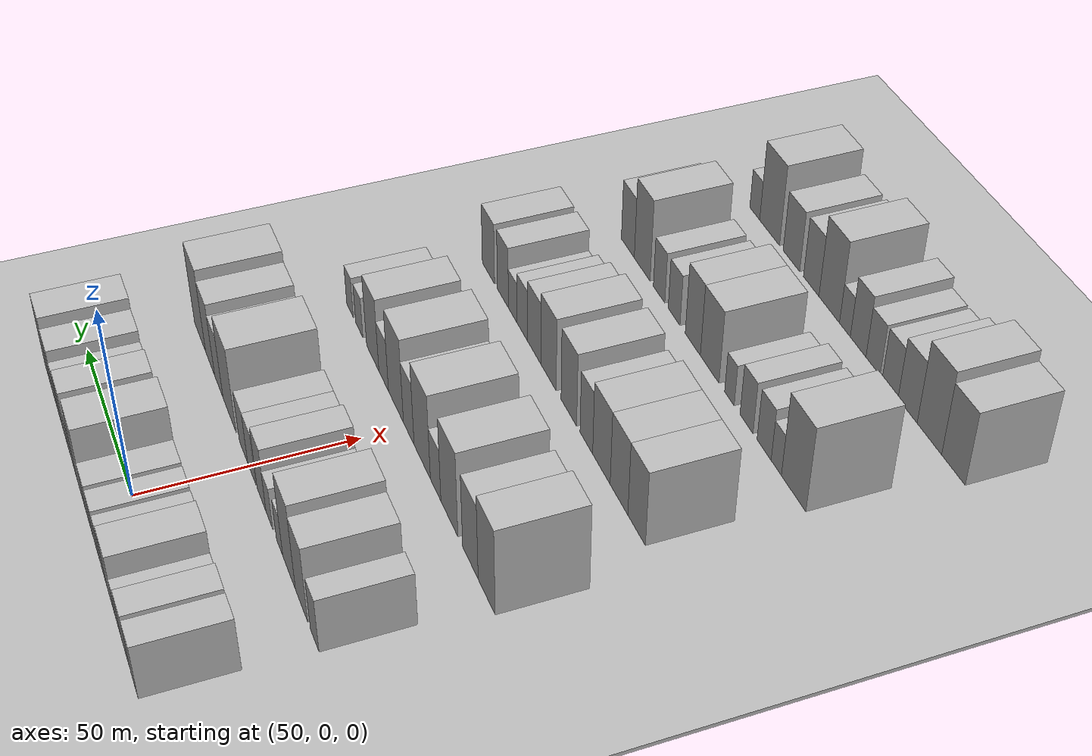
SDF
<sdf version="1.6">
 <world name="default">
  <include><name>ground_plane_1</name><uri>model://HANNAS_ground_plane</uri></include>
  <include>
   <name>ground_plane_2</name>
   <uri>model://HANNAS_ground_plane</uri>
   <pose>100 0 0  0 0 0</pose>
  </include>
  <model name="building_61">
   <static>1</static>
   <pose>50.0000 -51.2573 0 0.000000 0.000000 0.000000</pose>
   <link name="link">
    <pose>0 0 7.50 0 0 0</pose>
    <collision name="collision"><geometry><box><size>20.0000 7.0464 15.0000</size></box></geometry></collision>
    <visual name="visual">
     <cast_shadows>0</cast_shadows>
     <geometry><box><size>20.0000 7.0464 15.0000</size></box></geometry>
     <material>
      <script>
       <uri>model://HANNAS_wall/materials/scripts</uri>
       <uri>model://HANNAS_wall/materials/textures</uri>
       <name>vrc/HANNAS_wall</name>
      </script>
     </material>
    </visual>
   </link>
  </model>
  <model name="building_62">
   <static>1</static>
   <pose>50.0000 -43.1215 0 0.000000 0.000000 0.000000</pose>
   <link name="link">
    <pose>0 0 7.50 0 0 0</pose>
    <collision name="collision"><geometry><box><size>20.0000 7.2253 15.0000</size></box></geometry></collision>
    <visual name="visual">
     <cast_shadows>0</cast_shadows>
     <geometry><box><size>20.0000 7.2253 15.0000</size></box></geometry>
     <material>
      <script>
       <uri>model://HANNAS_wall/materials/scripts</uri>
       <uri>model://HANNAS_wall/materials/textures</uri>
       <name>vrc/HANNAS_wall</name>
      </script>
     </material>
    </visual>
   </link>
  </model>
  <model name="building_63">
   <static>1</static>
   <pose>50.0000 -36.5957 0 0.000000 0.000000 0.000000</pose>
   <link name="link">
    <pose>0 0 6.00 0 0 0</pose>
    <collision name="collision"><geometry><box><size>20.0000 5.8263 12.0000</size></box></geometry></collision>
    <visual name="visual">
     <cast_shadows>0</cast_shadows>
     <geometry><box><size>20.0000 5.8263 12.0000</size></box></geometry>
     <material>
      <script>
       <uri>model://HANNAS_wall/materials/scripts</uri>
       <uri>model://HANNAS_wall/materials/textures</uri>
       <name>vrc/HANNAS_wall</name>
      </script>
     </material>
    </visual>
   </link>
  </model>
  <model name="building_64">
   <static>1</static>
   <pose>50.0000 -29.1909 0 0.000000 0.000000 0.000000</pose>
   <link name="link">
    <pose>0 0 9.00 0 0 0</pose>
    <collision name="collision"><geometry><box><size>20.0000 8.9832 18.0000</size></box></geometry></collision>
    <visual name="visual">
     <cast_shadows>0</cast_shadows>
     <geometry><box><size>20.0000 8.9832 18.0000</size></box></geometry>
     <material>
      <script>
       <uri>model://HANNAS_wall/materials/scripts</uri>
       <uri>model://HANNAS_wall/materials/textures</uri>
       <name>vrc/HANNAS_wall</name>
      </script>
     </material>
    </visual>
   </link>
  </model>
  <model name="building_65">
   <static>1</static>
   <pose>50.0000 -21.6026 0 0.000000 0.000000 0.000000</pose>
   <link name="link">
    <pose>0 0 7.50 0 0 0</pose>
    <collision name="collision"><geometry><box><size>20.0000 6.1934 15.0000</size></box></geometry></collision>
    <visual name="visual">
     <cast_shadows>0</cast_shadows>
     <geometry><box><size>20.0000 6.1934 15.0000</size></box></geometry>
     <material>
      <script>
       <uri>model://HANNAS_wall/materials/scripts</uri>
       <uri>model://HANNAS_wall/materials/textures</uri>
       <name>vrc/HANNAS_wall</name>
      </script>
     </material>
    </visual>
   </link>
  </model>
  <model name="building_66">
   <static>1</static>
   <pose>50.0000 -14.2411 0 0.000000 0.000000 0.000000</pose>
   <link name="link">
    <pose>0 0 7.50 0 0 0</pose>
    <collision name="collision"><geometry><box><size>20.0000 6.5297 15.0000</size></box></geometry></collision>
    <visual name="visual">
     <cast_shadows>0</cast_shadows>
     <geometry><box><size>20.0000 6.5297 15.0000</size></box></geometry>
     <material>
      <script>
       <uri>model://HANNAS_wall/materials/scripts</uri>
       <uri>model://HANNAS_wall/materials/textures</uri>
       <name>vrc/HANNAS_wall</name>
      </script>
     </material>
    </visual>
   </link>
  </model>
  <model name="building_67">
   <static>1</static>
   <pose>50.0000 -6.2977 0 0.000000 0.000000 0.000000</pose>
   <link name="link">
    <pose>0 0 7.50 0 0 0</pose>
    <collision name="collision"><geometry><box><size>20.0000 7.3571 15.0000</size></box></geometry></collision>
    <visual name="visual">
     <cast_shadows>0</cast_shadows>
     <geometry><box><size>20.0000 7.3571 15.0000</size></box></geometry>
     <material>
      <script>
       <uri>model://HANNAS_wall/materials/scripts</uri>
       <uri>model://HANNAS_wall/materials/textures</uri>
       <name>vrc/HANNAS_wall</name>
      </script>
     </material>
    </visual>
   </link>
  </model>
  <model name="building_68">
   <static>1</static>
   <pose>50.0000 2.3740 0 0.000000 0.000000 0.000000</pose>
   <link name="link">
    <pose>0 0 12.00 0 0 0</pose>
    <collision name="collision"><geometry><box><size>20.0000 9.9862 24.0000</size></box></geometry></collision>
    <visual name="visual">
     <cast_shadows>0</cast_shadows>
     <geometry><box><size>20.0000 9.9862 24.0000</size></box></geometry>
     <material>
      <script>
       <uri>model://HANNAS_wall/materials/scripts</uri>
       <uri>model://HANNAS_wall/materials/textures</uri>
       <name>vrc/HANNAS_wall</name>
      </script>
     </material>
    </visual>
   </link>
  </model>
  <model name="building_69">
   <static>1</static>
   <pose>50.0000 10.7712 0 0.000000 0.000000 0.000000</pose>
   <link name="link">
    <pose>0 0 7.50 0 0 0</pose>
    <collision name="collision"><geometry><box><size>20.0000 6.8083 15.0000</size></box></geometry></collision>
    <visual name="visual">
     <cast_shadows>0</cast_shadows>
     <geometry><box><size>20.0000 6.8083 15.0000</size></box></geometry>
     <material>
      <script>
       <uri>model://HANNAS_wall/materials/scripts</uri>
       <uri>model://HANNAS_wall/materials/textures</uri>
       <name>vrc/HANNAS_wall</name>
      </script>
     </material>
    </visual>
   </link>
  </model>
  <model name="building_70">
   <static>1</static>
   <pose>50.0000 20.1690 0 0.000000 0.000000 0.000000</pose>
   <link name="link">
    <pose>0 0 9.00 0 0 0</pose>
    <collision name="collision"><geometry><box><size>20.0000 7.9873 18.0000</size></box></geometry></collision>
    <visual name="visual">
     <cast_shadows>0</cast_shadows>
     <geometry><box><size>20.0000 7.9873 18.0000</size></box></geometry>
     <material>
      <script>
       <uri>model://HANNAS_wall/materials/scripts</uri>
       <uri>model://HANNAS_wall/materials/textures</uri>
       <name>vrc/HANNAS_wall</name>
      </script>
     </material>
    </visual>
   </link>
  </model>
  <model name="building_71">
   <static>1</static>
   <pose>50.0000 27.3841 0 0.000000 0.000000 0.000000</pose>
   <link name="link">
    <pose>0 0 7.50 0 0 0</pose>
    <collision name="collision"><geometry><box><size>20.0000 6.4429 15.0000</size></box></geometry></collision>
    <visual name="visual">
     <cast_shadows>0</cast_shadows>
     <geometry><box><size>20.0000 6.4429 15.0000</size></box></geometry>
     <material>
      <script>
       <uri>model://HANNAS_wall/materials/scripts</uri>
       <uri>model://HANNAS_wall/materials/textures</uri>
       <name>vrc/HANNAS_wall</name>
      </script>
     </material>
    </visual>
   </link>
  </model>
  <model name="building_72">
   <static>1</static>
   <pose>50.0000 34.6465 0 0.000000 0.000000 0.000000</pose>
   <link name="link">
    <pose>0 0 9.00 0 0 0</pose>
    <collision name="collision"><geometry><box><size>20.0000 8.0820 18.0000</size></box></geometry></collision>
    <visual name="visual">
     <cast_shadows>0</cast_shadows>
     <geometry><box><size>20.0000 8.0820 18.0000</size></box></geometry>
     <material>
      <script>
       <uri>model://HANNAS_wall/materials/scripts</uri>
       <uri>model://HANNAS_wall/materials/textures</uri>
       <name>vrc/HANNAS_wall</name>
      </script>
     </material>
    </visual>
   </link>
  </model>
  <model name="building_73">
   <static>1</static>
   <pose>50.0000 43.2758 0 0.000000 0.000000 0.000000</pose>
   <link name="link">
    <pose>0 0 10.50 0 0 0</pose>
    <collision name="collision"><geometry><box><size>20.0000 9.1764 21.0000</size></box></geometry></collision>
    <visual name="visual">
     <cast_shadows>0</cast_shadows>
     <geometry><box><size>20.0000 9.1764 21.0000</size></box></geometry>
     <material>
      <script>
       <uri>model://HANNAS_wall/materials/scripts</uri>
       <uri>model://HANNAS_wall/materials/textures</uri>
       <name>vrc/HANNAS_wall</name>
      </script>
     </material>
    </visual>
   </link>
  </model>
  <model name="building_192">
   <static>1</static>
   <pose>85.0000 -52.5543 0 0.000000 0.000000 0.000000</pose>
   <link name="link">
    <pose>0 0 7.50 0 0 0</pose>
    <collision name="collision"><geometry><box><size>20.0000 6.1944 15.0000</size></box></geometry></collision>
    <visual name="visual">
     <cast_shadows>0</cast_shadows>
     <geometry><box><size>20.0000 6.1944 15.0000</size></box></geometry>
     <material>
      <script>
       <uri>model://HANNAS_wall/materials/scripts</uri>
       <uri>model://HANNAS_wall/materials/textures</uri>
       <name>vrc/HANNAS_wall</name>
      </script>
     </material>
    </visual>
   </link>
  </model>
  <model name="building_193">
   <static>1</static>
   <pose>85.0000 -42.9164 0 0.000000 0.000000 0.000000</pose>
   <link name="link">
    <pose>0 0 10.50 0 0 0</pose>
    <collision name="collision"><geometry><box><size>20.0000 9.0814 21.0000</size></box></geometry></collision>
    <visual name="visual">
     <cast_shadows>0</cast_shadows>
     <geometry><box><size>20.0000 9.0814 21.0000</size></box></geometry>
     <material>
      <script>
       <uri>model://HANNAS_wall/materials/scripts</uri>
       <uri>model://HANNAS_wall/materials/textures</uri>
       <name>vrc/HANNAS_wall</name>
      </script>
     </material>
    </visual>
   </link>
  </model>
  <model name="building_194">
   <static>1</static>
   <pose>85.0000 -33.4988 0 0.000000 0.000000 0.000000</pose>
   <link name="link">
    <pose>0 0 12.00 0 0 0</pose>
    <collision name="collision"><geometry><box><size>20.0000 9.7539 24.0000</size></box></geometry></collision>
    <visual name="visual">
     <cast_shadows>0</cast_shadows>
     <geometry><box><size>20.0000 9.7539 24.0000</size></box></geometry>
     <material>
      <script>
       <uri>model://HANNAS_wall/materials/scripts</uri>
       <uri>model://HANNAS_wall/materials/textures</uri>
       <name>vrc/HANNAS_wall</name>
      </script>
     </material>
    </visual>
   </link>
  </model>
  <model name="building_195">
   <static>1</static>
   <pose>85.0000 -26.1088 0 0.000000 0.000000 0.000000</pose>
   <link name="link">
    <pose>0 0 6.00 0 0 0</pose>
    <collision name="collision"><geometry><box><size>20.0000 5.0260 12.0000</size></box></geometry></collision>
    <visual name="visual">
     <cast_shadows>0</cast_shadows>
     <geometry><box><size>20.0000 5.0260 12.0000</size></box></geometry>
     <material>
      <script>
       <uri>model://HANNAS_wall/materials/scripts</uri>
       <uri>model://HANNAS_wall/materials/textures</uri>
       <name>vrc/HANNAS_wall</name>
      </script>
     </material>
    </visual>
   </link>
  </model>
  <model name="building_196">
   <static>1</static>
   <pose>85.0000 -17.8487 0 0.000000 0.000000 0.000000</pose>
   <link name="link">
    <pose>0 0 6.00 0 0 0</pose>
    <collision name="collision"><geometry><box><size>20.0000 5.4943 12.0000</size></box></geometry></collision>
    <visual name="visual">
     <cast_shadows>0</cast_shadows>
     <geometry><box><size>20.0000 5.4943 12.0000</size></box></geometry>
     <material>
      <script>
       <uri>model://HANNAS_wall/materials/scripts</uri>
       <uri>model://HANNAS_wall/materials/textures</uri>
       <name>vrc/HANNAS_wall</name>
      </script>
     </material>
    </visual>
   </link>
  </model>
  <model name="building_197">
   <static>1</static>
   <pose>85.0000 -11.4313 0 0.000000 0.000000 0.000000</pose>
   <link name="link">
    <pose>0 0 9.00 0 0 0</pose>
    <collision name="collision"><geometry><box><size>20.0000 7.3406 18.0000</size></box></geometry></collision>
    <visual name="visual">
     <cast_shadows>0</cast_shadows>
     <geometry><box><size>20.0000 7.3406 18.0000</size></box></geometry>
     <material>
      <script>
       <uri>model://HANNAS_wall/materials/scripts</uri>
       <uri>model://HANNAS_wall/materials/textures</uri>
       <name>vrc/HANNAS_wall</name>
      </script>
     </material>
    </visual>
   </link>
  </model>
  <model name="building_198">
   <static>1</static>
   <pose>85.0000 -3.2250 0 0.000000 0.000000 0.000000</pose>
   <link name="link">
    <pose>0 0 7.50 0 0 0</pose>
    <collision name="collision"><geometry><box><size>20.0000 7.0719 15.0000</size></box></geometry></collision>
    <visual name="visual">
     <cast_shadows>0</cast_shadows>
     <geometry><box><size>20.0000 7.0719 15.0000</size></box></geometry>
     <material>
      <script>
       <uri>model://HANNAS_wall/materials/scripts</uri>
       <uri>model://HANNAS_wall/materials/textures</uri>
       <name>vrc/HANNAS_wall</name>
      </script>
     </material>
    </visual>
   </link>
  </model>
  <model name="building_199">
   <static>1</static>
   <pose>85.0000 3.9898 0 0.000000 0.000000 0.000000</pose>
   <link name="link">
    <pose>0 0 7.50 0 0 0</pose>
    <collision name="collision"><geometry><box><size>20.0000 7.3577 15.0000</size></box></geometry></collision>
    <visual name="visual">
     <cast_shadows>0</cast_shadows>
     <geometry><box><size>20.0000 7.3577 15.0000</size></box></geometry>
     <material>
      <script>
       <uri>model://HANNAS_wall/materials/scripts</uri>
       <uri>model://HANNAS_wall/materials/textures</uri>
       <name>vrc/HANNAS_wall</name>
      </script>
     </material>
    </visual>
   </link>
  </model>
  <model name="building_200">
   <static>1</static>
   <pose>85.0000 16.6327 0 0.000000 0.000000 0.000000</pose>
   <link name="link">
    <pose>0 0 12.00 0 0 0</pose>
    <collision name="collision"><geometry><box><size>20.0000 11.9281 24.0000</size></box></geometry></collision>
    <visual name="visual">
     <cast_shadows>0</cast_shadows>
     <geometry><box><size>20.0000 11.9281 24.0000</size></box></geometry>
     <material>
      <script>
       <uri>model://HANNAS_wall/materials/scripts</uri>
       <uri>model://HANNAS_wall/materials/textures</uri>
       <name>vrc/HANNAS_wall</name>
      </script>
     </material>
    </visual>
   </link>
  </model>
  <model name="building_201">
   <static>1</static>
   <pose>85.0000 26.5416 0 0.000000 0.000000 0.000000</pose>
   <link name="link">
    <pose>0 0 9.00 0 0 0</pose>
    <collision name="collision"><geometry><box><size>20.0000 7.8899 18.0000</size></box></geometry></collision>
    <visual name="visual">
     <cast_shadows>0</cast_shadows>
     <geometry><box><size>20.0000 7.8899 18.0000</size></box></geometry>
     <material>
      <script>
       <uri>model://HANNAS_wall/materials/scripts</uri>
       <uri>model://HANNAS_wall/materials/textures</uri>
       <name>vrc/HANNAS_wall</name>
      </script>
     </material>
    </visual>
   </link>
  </model>
  <model name="building_202">
   <static>1</static>
   <pose>85.0000 34.9205 0 0.000000 0.000000 0.000000</pose>
   <link name="link">
    <pose>0 0 10.50 0 0 0</pose>
    <collision name="collision"><geometry><box><size>20.0000 8.8678 21.0000</size></box></geometry></collision>
    <visual name="visual">
     <cast_shadows>0</cast_shadows>
     <geometry><box><size>20.0000 8.8678 21.0000</size></box></geometry>
     <material>
      <script>
       <uri>model://HANNAS_wall/materials/scripts</uri>
       <uri>model://HANNAS_wall/materials/textures</uri>
       <name>vrc/HANNAS_wall</name>
      </script>
     </material>
    </visual>
   </link>
  </model>
  <model name="building_203">
   <static>1</static>
   <pose>85.0000 44.9056 0 0.000000 0.000000 0.000000</pose>
   <link name="link">
    <pose>0 0 12.00 0 0 0</pose>
    <collision name="collision"><geometry><box><size>20.0000 11.1026 24.0000</size></box></geometry></collision>
    <visual name="visual">
     <cast_shadows>0</cast_shadows>
     <geometry><box><size>20.0000 11.1026 24.0000</size></box></geometry>
     <material>
      <script>
       <uri>model://HANNAS_wall/materials/scripts</uri>
       <uri>model://HANNAS_wall/materials/textures</uri>
       <name>vrc/HANNAS_wall</name>
      </script>
     </material>
    </visual>
   </link>
  </model>
  <model name="building_325">
   <static>1</static>
   <pose>120.0000 -53.5078 0 0.000000 0.000000 0.000000</pose>
   <link name="link">
    <pose>0 0 12.00 0 0 0</pose>
    <collision name="collision"><geometry><box><size>20.0000 10.1229 24.0000</size></box></geometry></collision>
    <visual name="visual">
     <cast_shadows>0</cast_shadows>
     <geometry><box><size>20.0000 10.1229 24.0000</size></box></geometry>
     <material>
      <script>
       <uri>model://HANNAS_wall/materials/scripts</uri>
       <uri>model://HANNAS_wall/materials/textures</uri>
       <name>vrc/HANNAS_wall</name>
      </script>
     </material>
    </visual>
   </link>
  </model>
  <model name="building_326">
   <static>1</static>
   <pose>120.0000 -43.6629 0 0.000000 0.000000 0.000000</pose>
   <link name="link">
    <pose>0 0 10.50 0 0 0</pose>
    <collision name="collision"><geometry><box><size>20.0000 9.5670 21.0000</size></box></geometry></collision>
    <visual name="visual">
     <cast_shadows>0</cast_shadows>
     <geometry><box><size>20.0000 9.5670 21.0000</size></box></geometry>
     <material>
      <script>
       <uri>model://HANNAS_wall/materials/scripts</uri>
       <uri>model://HANNAS_wall/materials/textures</uri>
       <name>vrc/HANNAS_wall</name>
      </script>
     </material>
    </visual>
   </link>
  </model>
  <model name="building_327">
   <static>1</static>
   <pose>120.0000 -30.3827 0 0.000000 0.000000 0.000000</pose>
   <link name="link">
    <pose>0 0 12.00 0 0 0</pose>
    <collision name="collision"><geometry><box><size>20.0000 10.9932 24.0000</size></box></geometry></collision>
    <visual name="visual">
     <cast_shadows>0</cast_shadows>
     <geometry><box><size>20.0000 10.9932 24.0000</size></box></geometry>
     <material>
      <script>
       <uri>model://HANNAS_wall/materials/scripts</uri>
       <uri>model://HANNAS_wall/materials/textures</uri>
       <name>vrc/HANNAS_wall</name>
      </script>
     </material>
    </visual>
   </link>
  </model>
  <model name="building_328">
   <static>1</static>
   <pose>120.0000 -21.3766 0 0.000000 0.000000 0.000000</pose>
   <link name="link">
    <pose>0 0 7.50 0 0 0</pose>
    <collision name="collision"><geometry><box><size>20.0000 7.0191 15.0000</size></box></geometry></collision>
    <visual name="visual">
     <cast_shadows>0</cast_shadows>
     <geometry><box><size>20.0000 7.0191 15.0000</size></box></geometry>
     <material>
      <script>
       <uri>model://HANNAS_wall/materials/scripts</uri>
       <uri>model://HANNAS_wall/materials/textures</uri>
       <name>vrc/HANNAS_wall</name>
      </script>
     </material>
    </visual>
   </link>
  </model>
  <model name="building_329">
   <static>1</static>
   <pose>120.0000 -12.2544 0 0.000000 0.000000 0.000000</pose>
   <link name="link">
    <pose>0 0 12.00 0 0 0</pose>
    <collision name="collision"><geometry><box><size>20.0000 11.2252 24.0000</size></box></geometry></collision>
    <visual name="visual">
     <cast_shadows>0</cast_shadows>
     <geometry><box><size>20.0000 11.2252 24.0000</size></box></geometry>
     <material>
      <script>
       <uri>model://HANNAS_wall/materials/scripts</uri>
       <uri>model://HANNAS_wall/materials/textures</uri>
       <name>vrc/HANNAS_wall</name>
      </script>
     </material>
    </visual>
   </link>
  </model>
  <model name="building_330">
   <static>1</static>
   <pose>120.0000 -2.8559 0 0.000000 0.000000 0.000000</pose>
   <link name="link">
    <pose>0 0 9.00 0 0 0</pose>
    <collision name="collision"><geometry><box><size>20.0000 7.5718 18.0000</size></box></geometry></collision>
    <visual name="visual">
     <cast_shadows>0</cast_shadows>
     <geometry><box><size>20.0000 7.5718 18.0000</size></box></geometry>
     <material>
      <script>
       <uri>model://HANNAS_wall/materials/scripts</uri>
       <uri>model://HANNAS_wall/materials/textures</uri>
       <name>vrc/HANNAS_wall</name>
      </script>
     </material>
    </visual>
   </link>
  </model>
  <model name="building_331">
   <static>1</static>
   <pose>120.0000 6.4164 0 0.000000 0.000000 0.000000</pose>
   <link name="link">
    <pose>0 0 12.00 0 0 0</pose>
    <collision name="collision"><geometry><box><size>20.0000 10.9729 24.0000</size></box></geometry></collision>
    <visual name="visual">
     <cast_shadows>0</cast_shadows>
     <geometry><box><size>20.0000 10.9729 24.0000</size></box></geometry>
     <material>
      <script>
       <uri>model://HANNAS_wall/materials/scripts</uri>
       <uri>model://HANNAS_wall/materials/textures</uri>
       <name>vrc/HANNAS_wall</name>
      </script>
     </material>
    </visual>
   </link>
  </model>
  <model name="building_332">
   <static>1</static>
   <pose>120.0000 15.5432 0 0.000000 0.000000 0.000000</pose>
   <link name="link">
    <pose>0 0 7.50 0 0 0</pose>
    <collision name="collision"><geometry><box><size>20.0000 7.2806 15.0000</size></box></geometry></collision>
    <visual name="visual">
     <cast_shadows>0</cast_shadows>
     <geometry><box><size>20.0000 7.2806 15.0000</size></box></geometry>
     <material>
      <script>
       <uri>model://HANNAS_wall/materials/scripts</uri>
       <uri>model://HANNAS_wall/materials/textures</uri>
       <name>vrc/HANNAS_wall</name>
      </script>
     </material>
    </visual>
   </link>
  </model>
  <model name="building_333">
   <static>1</static>
   <pose>120.0000 23.9518 0 0.000000 0.000000 0.000000</pose>
   <link name="link">
    <pose>0 0 10.50 0 0 0</pose>
    <collision name="collision"><geometry><box><size>20.0000 9.5365 21.0000</size></box></geometry></collision>
    <visual name="visual">
     <cast_shadows>0</cast_shadows>
     <geometry><box><size>20.0000 9.5365 21.0000</size></box></geometry>
     <material>
      <script>
       <uri>model://HANNAS_wall/materials/scripts</uri>
       <uri>model://HANNAS_wall/materials/textures</uri>
       <name>vrc/HANNAS_wall</name>
      </script>
     </material>
    </visual>
   </link>
  </model>
  <model name="building_334">
   <static>1</static>
   <pose>120.0000 34.6033 0 0.000000 0.000000 0.000000</pose>
   <link name="link">
    <pose>0 0 6.00 0 0 0</pose>
    <collision name="collision"><geometry><box><size>20.0000 5.7666 12.0000</size></box></geometry></collision>
    <visual name="visual">
     <cast_shadows>0</cast_shadows>
     <geometry><box><size>20.0000 5.7666 12.0000</size></box></geometry>
     <material>
      <script>
       <uri>model://HANNAS_wall/materials/scripts</uri>
       <uri>model://HANNAS_wall/materials/textures</uri>
       <name>vrc/HANNAS_wall</name>
      </script>
     </material>
    </visual>
   </link>
  </model>
  <model name="building_335">
   <static>1</static>
   <pose>120.0000 42.1564 0 0.000000 0.000000 0.000000</pose>
   <link name="link">
    <pose>0 0 6.00 0 0 0</pose>
    <collision name="collision"><geometry><box><size>20.0000 5.3396 12.0000</size></box></geometry></collision>
    <visual name="visual">
     <cast_shadows>0</cast_shadows>
     <geometry><box><size>20.0000 5.3396 12.0000</size></box></geometry>
     <material>
      <script>
       <uri>model://HANNAS_wall/materials/scripts</uri>
       <uri>model://HANNAS_wall/materials/textures</uri>
       <name>vrc/HANNAS_wall</name>
      </script>
     </material>
    </visual>
   </link>
  </model>
  <model name="building_456">
   <static>1</static>
   <pose>155.0000 -46.9474 0 0.000000 0.000000 0.000000</pose>
   <link name="link">
    <pose>0 0 10.50 0 0 0</pose>
    <collision name="collision"><geometry><box><size>20.0000 9.3129 21.0000</size></box></geometry></collision>
    <visual name="visual">
     <cast_shadows>0</cast_shadows>
     <geometry><box><size>20.0000 9.3129 21.0000</size></box></geometry>
     <material>
      <script>
       <uri>model://HANNAS_wall/materials/scripts</uri>
       <uri>model://HANNAS_wall/materials/textures</uri>
       <name>vrc/HANNAS_wall</name>
      </script>
     </material>
    </visual>
   </link>
  </model>
  <model name="building_457">
   <static>1</static>
   <pose>155.0000 -37.4497 0 0.000000 0.000000 0.000000</pose>
   <link name="link">
    <pose>0 0 10.50 0 0 0</pose>
    <collision name="collision"><geometry><box><size>20.0000 9.6825 21.0000</size></box></geometry></collision>
    <visual name="visual">
     <cast_shadows>0</cast_shadows>
     <geometry><box><size>20.0000 9.6825 21.0000</size></box></geometry>
     <material>
      <script>
       <uri>model://HANNAS_wall/materials/scripts</uri>
       <uri>model://HANNAS_wall/materials/textures</uri>
       <name>vrc/HANNAS_wall</name>
      </script>
     </material>
    </visual>
   </link>
  </model>
  <model name="building_458">
   <static>1</static>
   <pose>155.0000 -27.6657 0 0.000000 0.000000 0.000000</pose>
   <link name="link">
    <pose>0 0 10.50 0 0 0</pose>
    <collision name="collision"><geometry><box><size>20.0000 9.8856 21.0000</size></box></geometry></collision>
    <visual name="visual">
     <cast_shadows>0</cast_shadows>
     <geometry><box><size>20.0000 9.8856 21.0000</size></box></geometry>
     <material>
      <script>
       <uri>model://HANNAS_wall/materials/scripts</uri>
       <uri>model://HANNAS_wall/materials/textures</uri>
       <name>vrc/HANNAS_wall</name>
      </script>
     </material>
    </visual>
   </link>
  </model>
  <model name="building_459">
   <static>1</static>
   <pose>155.0000 -19.0377 0 0.000000 0.000000 0.000000</pose>
   <link name="link">
    <pose>0 0 9.00 0 0 0</pose>
    <collision name="collision"><geometry><box><size>20.0000 7.3703 18.0000</size></box></geometry></collision>
    <visual name="visual">
     <cast_shadows>0</cast_shadows>
     <geometry><box><size>20.0000 7.3703 18.0000</size></box></geometry>
     <material>
      <script>
       <uri>model://HANNAS_wall/materials/scripts</uri>
       <uri>model://HANNAS_wall/materials/textures</uri>
       <name>vrc/HANNAS_wall</name>
      </script>
     </material>
    </visual>
   </link>
  </model>
  <model name="building_460">
   <static>1</static>
   <pose>155.0000 -8.6453 0 0.000000 0.000000 0.000000</pose>
   <link name="link">
    <pose>0 0 10.50 0 0 0</pose>
    <collision name="collision"><geometry><box><size>20.0000 9.4146 21.0000</size></box></geometry></collision>
    <visual name="visual">
     <cast_shadows>0</cast_shadows>
     <geometry><box><size>20.0000 9.4146 21.0000</size></box></geometry>
     <material>
      <script>
       <uri>model://HANNAS_wall/materials/scripts</uri>
       <uri>model://HANNAS_wall/materials/textures</uri>
       <name>vrc/HANNAS_wall</name>
      </script>
     </material>
    </visual>
   </link>
  </model>
  <model name="building_461">
   <static>1</static>
   <pose>155.0000 3.8956 0 0.000000 0.000000 0.000000</pose>
   <link name="link">
    <pose>0 0 10.50 0 0 0</pose>
    <collision name="collision"><geometry><box><size>20.0000 9.6671 21.0000</size></box></geometry></collision>
    <visual name="visual">
     <cast_shadows>0</cast_shadows>
     <geometry><box><size>20.0000 9.6671 21.0000</size></box></geometry>
     <material>
      <script>
       <uri>model://HANNAS_wall/materials/scripts</uri>
       <uri>model://HANNAS_wall/materials/textures</uri>
       <name>vrc/HANNAS_wall</name>
      </script>
     </material>
    </visual>
   </link>
  </model>
  <model name="building_462">
   <static>1</static>
   <pose>155.0000 13.0153 0 0.000000 0.000000 0.000000</pose>
   <link name="link">
    <pose>0 0 9.00 0 0 0</pose>
    <collision name="collision"><geometry><box><size>20.0000 8.5723 18.0000</size></box></geometry></collision>
    <visual name="visual">
     <cast_shadows>0</cast_shadows>
     <geometry><box><size>20.0000 8.5723 18.0000</size></box></geometry>
     <material>
      <script>
       <uri>model://HANNAS_wall/materials/scripts</uri>
       <uri>model://HANNAS_wall/materials/textures</uri>
       <name>vrc/HANNAS_wall</name>
      </script>
     </material>
    </visual>
   </link>
  </model>
  <model name="building_463">
   <static>1</static>
   <pose>155.0000 20.8389 0 0.000000 0.000000 0.000000</pose>
   <link name="link">
    <pose>0 0 7.50 0 0 0</pose>
    <collision name="collision"><geometry><box><size>20.0000 7.0749 15.0000</size></box></geometry></collision>
    <visual name="visual">
     <cast_shadows>0</cast_shadows>
     <geometry><box><size>20.0000 7.0749 15.0000</size></box></geometry>
     <material>
      <script>
       <uri>model://HANNAS_wall/materials/scripts</uri>
       <uri>model://HANNAS_wall/materials/textures</uri>
       <name>vrc/HANNAS_wall</name>
      </script>
     </material>
    </visual>
   </link>
  </model>
  <model name="building_464">
   <static>1</static>
   <pose>155.0000 27.2709 0 0.000000 0.000000 0.000000</pose>
   <link name="link">
    <pose>0 0 6.00 0 0 0</pose>
    <collision name="collision"><geometry><box><size>20.0000 5.7892 12.0000</size></box></geometry></collision>
    <visual name="visual">
     <cast_shadows>0</cast_shadows>
     <geometry><box><size>20.0000 5.7892 12.0000</size></box></geometry>
     <material>
      <script>
       <uri>model://HANNAS_wall/materials/scripts</uri>
       <uri>model://HANNAS_wall/materials/textures</uri>
       <name>vrc/HANNAS_wall</name>
      </script>
     </material>
    </visual>
   </link>
  </model>
  <model name="building_465">
   <static>1</static>
   <pose>155.0000 33.9955 0 0.000000 0.000000 0.000000</pose>
   <link name="link">
    <pose>0 0 9.00 0 0 0</pose>
    <collision name="collision"><geometry><box><size>20.0000 7.6600 18.0000</size></box></geometry></collision>
    <visual name="visual">
     <cast_shadows>0</cast_shadows>
     <geometry><box><size>20.0000 7.6600 18.0000</size></box></geometry>
     <material>
      <script>
       <uri>model://HANNAS_wall/materials/scripts</uri>
       <uri>model://HANNAS_wall/materials/textures</uri>
       <name>vrc/HANNAS_wall</name>
      </script>
     </material>
    </visual>
   </link>
  </model>
  <model name="building_466">
   <static>1</static>
   <pose>155.0000 44.1787 0 0.000000 0.000000 0.000000</pose>
   <link name="link">
    <pose>0 0 9.00 0 0 0</pose>
    <collision name="collision"><geometry><box><size>20.0000 8.7064 18.0000</size></box></geometry></collision>
    <visual name="visual">
     <cast_shadows>0</cast_shadows>
     <geometry><box><size>20.0000 8.7064 18.0000</size></box></geometry>
     <material>
      <script>
       <uri>model://HANNAS_wall/materials/scripts</uri>
       <uri>model://HANNAS_wall/materials/textures</uri>
       <name>vrc/HANNAS_wall</name>
      </script>
     </material>
    </visual>
   </link>
  </model>
  <model name="building_586">
   <static>1</static>
   <pose>190.0000 -48.6015 0 0.000000 0.000000 0.000000</pose>
   <link name="link">
    <pose>0 0 12.00 0 0 0</pose>
    <collision name="collision"><geometry><box><size>20.0000 11.5122 24.0000</size></box></geometry></collision>
    <visual name="visual">
     <cast_shadows>0</cast_shadows>
     <geometry><box><size>20.0000 11.5122 24.0000</size></box></geometry>
     <material>
      <script>
       <uri>model://HANNAS_wall/materials/scripts</uri>
       <uri>model://HANNAS_wall/materials/textures</uri>
       <name>vrc/HANNAS_wall</name>
      </script>
     </material>
    </visual>
   </link>
  </model>
  <model name="building_587">
   <static>1</static>
   <pose>190.0000 -40.3677 0 0.000000 0.000000 0.000000</pose>
   <link name="link">
    <pose>0 0 6.00 0 0 0</pose>
    <collision name="collision"><geometry><box><size>20.0000 4.9556 12.0000</size></box></geometry></collision>
    <visual name="visual">
     <cast_shadows>0</cast_shadows>
     <geometry><box><size>20.0000 4.9556 12.0000</size></box></geometry>
     <material>
      <script>
       <uri>model://HANNAS_wall/materials/scripts</uri>
       <uri>model://HANNAS_wall/materials/textures</uri>
       <name>vrc/HANNAS_wall</name>
      </script>
     </material>
    </visual>
   </link>
  </model>
  <model name="building_588">
   <static>1</static>
   <pose>190.0000 -34.4048 0 0.000000 0.000000 0.000000</pose>
   <link name="link">
    <pose>0 0 7.50 0 0 0</pose>
    <collision name="collision"><geometry><box><size>20.0000 6.9701 15.0000</size></box></geometry></collision>
    <visual name="visual">
     <cast_shadows>0</cast_shadows>
     <geometry><box><size>20.0000 6.9701 15.0000</size></box></geometry>
     <material>
      <script>
       <uri>model://HANNAS_wall/materials/scripts</uri>
       <uri>model://HANNAS_wall/materials/textures</uri>
       <name>vrc/HANNAS_wall</name>
      </script>
     </material>
    </visual>
   </link>
  </model>
  <model name="building_589">
   <static>1</static>
   <pose>190.0000 -25.6129 0 0.000000 0.000000 0.000000</pose>
   <link name="link">
    <pose>0 0 7.50 0 0 0</pose>
    <collision name="collision"><geometry><box><size>20.0000 6.6137 15.0000</size></box></geometry></collision>
    <visual name="visual">
     <cast_shadows>0</cast_shadows>
     <geometry><box><size>20.0000 6.6137 15.0000</size></box></geometry>
     <material>
      <script>
       <uri>model://HANNAS_wall/materials/scripts</uri>
       <uri>model://HANNAS_wall/materials/textures</uri>
       <name>vrc/HANNAS_wall</name>
      </script>
     </material>
    </visual>
   </link>
  </model>
  <model name="building_590">
   <static>1</static>
   <pose>190.0000 -16.8023 0 0.000000 0.000000 0.000000</pose>
   <link name="link">
    <pose>0 0 6.00 0 0 0</pose>
    <collision name="collision"><geometry><box><size>20.0000 5.0074 12.0000</size></box></geometry></collision>
    <visual name="visual">
     <cast_shadows>0</cast_shadows>
     <geometry><box><size>20.0000 5.0074 12.0000</size></box></geometry>
     <material>
      <script>
       <uri>model://HANNAS_wall/materials/scripts</uri>
       <uri>model://HANNAS_wall/materials/textures</uri>
       <name>vrc/HANNAS_wall</name>
      </script>
     </material>
    </visual>
   </link>
  </model>
  <model name="building_591">
   <static>1</static>
   <pose>190.0000 -6.2386 0 0.000000 0.000000 0.000000</pose>
   <link name="link">
    <pose>0 0 10.50 0 0 0</pose>
    <collision name="collision"><geometry><box><size>20.0000 10.1200 21.0000</size></box></geometry></collision>
    <visual name="visual">
     <cast_shadows>0</cast_shadows>
     <geometry><box><size>20.0000 10.1200 21.0000</size></box></geometry>
     <material>
      <script>
       <uri>model://HANNAS_wall/materials/scripts</uri>
       <uri>model://HANNAS_wall/materials/textures</uri>
       <name>vrc/HANNAS_wall</name>
      </script>
     </material>
    </visual>
   </link>
  </model>
  <model name="building_592">
   <static>1</static>
   <pose>190.0000 3.0444 0 0.000000 0.000000 0.000000</pose>
   <link name="link">
    <pose>0 0 10.50 0 0 0</pose>
    <collision name="collision"><geometry><box><size>20.0000 8.4461 21.0000</size></box></geometry></collision>
    <visual name="visual">
     <cast_shadows>0</cast_shadows>
     <geometry><box><size>20.0000 8.4461 21.0000</size></box></geometry>
     <material>
      <script>
       <uri>model://HANNAS_wall/materials/scripts</uri>
       <uri>model://HANNAS_wall/materials/textures</uri>
       <name>vrc/HANNAS_wall</name>
      </script>
     </material>
    </visual>
   </link>
  </model>
  <model name="building_593">
   <static>1</static>
   <pose>190.0000 13.6776 0 0.000000 0.000000 0.000000</pose>
   <link name="link">
    <pose>0 0 7.50 0 0 0</pose>
    <collision name="collision"><geometry><box><size>20.0000 6.8204 15.0000</size></box></geometry></collision>
    <visual name="visual">
     <cast_shadows>0</cast_shadows>
     <geometry><box><size>20.0000 6.8204 15.0000</size></box></geometry>
     <material>
      <script>
       <uri>model://HANNAS_wall/materials/scripts</uri>
       <uri>model://HANNAS_wall/materials/textures</uri>
       <name>vrc/HANNAS_wall</name>
      </script>
     </material>
    </visual>
   </link>
  </model>
  <model name="building_594">
   <static>1</static>
   <pose>190.0000 22.4784 0 0.000000 0.000000 0.000000</pose>
   <link name="link">
    <pose>0 0 7.50 0 0 0</pose>
    <collision name="collision"><geometry><box><size>20.0000 6.7812 15.0000</size></box></geometry></collision>
    <visual name="visual">
     <cast_shadows>0</cast_shadows>
     <geometry><box><size>20.0000 6.7812 15.0000</size></box></geometry>
     <material>
      <script>
       <uri>model://HANNAS_wall/materials/scripts</uri>
       <uri>model://HANNAS_wall/materials/textures</uri>
       <name>vrc/HANNAS_wall</name>
      </script>
     </material>
    </visual>
   </link>
  </model>
  <model name="building_595">
   <static>1</static>
   <pose>190.0000 32.7006 0 0.000000 0.000000 0.000000</pose>
   <link name="link">
    <pose>0 0 12.00 0 0 0</pose>
    <collision name="collision"><geometry><box><size>20.0000 9.6631 24.0000</size></box></geometry></collision>
    <visual name="visual">
     <cast_shadows>0</cast_shadows>
     <geometry><box><size>20.0000 9.6631 24.0000</size></box></geometry>
     <material>
      <script>
       <uri>model://HANNAS_wall/materials/scripts</uri>
       <uri>model://HANNAS_wall/materials/textures</uri>
       <name>vrc/HANNAS_wall</name>
      </script>
     </material>
    </visual>
   </link>
  </model>
  <model name="building_596">
   <static>1</static>
   <pose>190.0000 41.6064 0 0.000000 0.000000 0.000000</pose>
   <link name="link">
    <pose>0 0 9.00 0 0 0</pose>
    <collision name="collision"><geometry><box><size>20.0000 8.1485 18.0000</size></box></geometry></collision>
    <visual name="visual">
     <cast_shadows>0</cast_shadows>
     <geometry><box><size>20.0000 8.1485 18.0000</size></box></geometry>
     <material>
      <script>
       <uri>model://HANNAS_wall/materials/scripts</uri>
       <uri>model://HANNAS_wall/materials/textures</uri>
       <name>vrc/HANNAS_wall</name>
      </script>
     </material>
    </visual>
   </link>
  </model>
  <model name="building_711">
   <static>1</static>
   <pose>225.0000 -54.1112 0 0.000000 0.000000 0.000000</pose>
   <link name="link">
    <pose>0 0 10.50 0 0 0</pose>
    <collision name="collision"><geometry><box><size>20.0000 9.9501 21.0000</size></box></geometry></collision>
    <visual name="visual">
     <cast_shadows>0</cast_shadows>
     <geometry><box><size>20.0000 9.9501 21.0000</size></box></geometry>
     <material>
      <script>
       <uri>model://HANNAS_wall/materials/scripts</uri>
       <uri>model://HANNAS_wall/materials/textures</uri>
       <name>vrc/HANNAS_wall</name>
      </script>
     </material>
    </visual>
   </link>
  </model>
  <model name="building_712">
   <static>1</static>
   <pose>225.0000 -43.7957 0 0.000000 0.000000 0.000000</pose>
   <link name="link">
    <pose>0 0 12.00 0 0 0</pose>
    <collision name="collision"><geometry><box><size>20.0000 10.6809 24.0000</size></box></geometry></collision>
    <visual name="visual">
     <cast_shadows>0</cast_shadows>
     <geometry><box><size>20.0000 10.6809 24.0000</size></box></geometry>
     <material>
      <script>
       <uri>model://HANNAS_wall/materials/scripts</uri>
       <uri>model://HANNAS_wall/materials/textures</uri>
       <name>vrc/HANNAS_wall</name>
      </script>
     </material>
    </visual>
   </link>
  </model>
  <model name="building_713">
   <static>1</static>
   <pose>225.0000 -34.1545 0 0.000000 0.000000 0.000000</pose>
   <link name="link">
    <pose>0 0 9.00 0 0 0</pose>
    <collision name="collision"><geometry><box><size>20.0000 8.6014 18.0000</size></box></geometry></collision>
    <visual name="visual">
     <cast_shadows>0</cast_shadows>
     <geometry><box><size>20.0000 8.6014 18.0000</size></box></geometry>
     <material>
      <script>
       <uri>model://HANNAS_wall/materials/scripts</uri>
       <uri>model://HANNAS_wall/materials/textures</uri>
       <name>vrc/HANNAS_wall</name>
      </script>
     </material>
    </visual>
   </link>
  </model>
  <model name="building_714">
   <static>1</static>
   <pose>225.0000 -26.2137 0 0.000000 0.000000 0.000000</pose>
   <link name="link">
    <pose>0 0 7.50 0 0 0</pose>
    <collision name="collision"><geometry><box><size>20.0000 7.2804 15.0000</size></box></geometry></collision>
    <visual name="visual">
     <cast_shadows>0</cast_shadows>
     <geometry><box><size>20.0000 7.2804 15.0000</size></box></geometry>
     <material>
      <script>
       <uri>model://HANNAS_wall/materials/scripts</uri>
       <uri>model://HANNAS_wall/materials/textures</uri>
       <name>vrc/HANNAS_wall</name>
      </script>
     </material>
    </visual>
   </link>
  </model>
  <model name="building_715">
   <static>1</static>
   <pose>225.0000 -18.2010 0 0.000000 0.000000 0.000000</pose>
   <link name="link">
    <pose>0 0 7.50 0 0 0</pose>
    <collision name="collision"><geometry><box><size>20.0000 6.7448 15.0000</size></box></geometry></collision>
    <visual name="visual">
     <cast_shadows>0</cast_shadows>
     <geometry><box><size>20.0000 6.7448 15.0000</size></box></geometry>
     <material>
      <script>
       <uri>model://HANNAS_wall/materials/scripts</uri>
       <uri>model://HANNAS_wall/materials/textures</uri>
       <name>vrc/HANNAS_wall</name>
      </script>
     </material>
    </visual>
   </link>
  </model>
  <model name="building_716">
   <static>1</static>
   <pose>225.0000 -11.0196 0 0.000000 0.000000 0.000000</pose>
   <link name="link">
    <pose>0 0 9.00 0 0 0</pose>
    <collision name="collision"><geometry><box><size>20.0000 7.6180 18.0000</size></box></geometry></collision>
    <visual name="visual">
     <cast_shadows>0</cast_shadows>
     <geometry><box><size>20.0000 7.6180 18.0000</size></box></geometry>
     <material>
      <script>
       <uri>model://HANNAS_wall/materials/scripts</uri>
       <uri>model://HANNAS_wall/materials/textures</uri>
       <name>vrc/HANNAS_wall</name>
      </script>
     </material>
    </visual>
   </link>
  </model>
  <model name="building_717">
   <static>1</static>
   <pose>225.0000 -4.5329 0 0.000000 0.000000 0.000000</pose>
   <link name="link">
    <pose>0 0 6.00 0 0 0</pose>
    <collision name="collision"><geometry><box><size>20.0000 5.3556 12.0000</size></box></geometry></collision>
    <visual name="visual">
     <cast_shadows>0</cast_shadows>
     <geometry><box><size>20.0000 5.3556 12.0000</size></box></geometry>
     <material>
      <script>
       <uri>model://HANNAS_wall/materials/scripts</uri>
       <uri>model://HANNAS_wall/materials/textures</uri>
       <name>vrc/HANNAS_wall</name>
      </script>
     </material>
    </visual>
   </link>
  </model>
  <model name="building_718">
   <static>1</static>
   <pose>225.0000 3.3754 0 0.000000 0.000000 0.000000</pose>
   <link name="link">
    <pose>0 0 12.00 0 0 0</pose>
    <collision name="collision"><geometry><box><size>20.0000 10.4609 24.0000</size></box></geometry></collision>
    <visual name="visual">
     <cast_shadows>0</cast_shadows>
     <geometry><box><size>20.0000 10.4609 24.0000</size></box></geometry>
     <material>
      <script>
       <uri>model://HANNAS_wall/materials/scripts</uri>
       <uri>model://HANNAS_wall/materials/textures</uri>
       <name>vrc/HANNAS_wall</name>
      </script>
     </material>
    </visual>
   </link>
  </model>
  <model name="building_719">
   <static>1</static>
   <pose>225.0000 12.6582 0 0.000000 0.000000 0.000000</pose>
   <link name="link">
    <pose>0 0 9.00 0 0 0</pose>
    <collision name="collision"><geometry><box><size>20.0000 8.1046 18.0000</size></box></geometry></collision>
    <visual name="visual">
     <cast_shadows>0</cast_shadows>
     <geometry><box><size>20.0000 8.1046 18.0000</size></box></geometry>
     <material>
      <script>
       <uri>model://HANNAS_wall/materials/scripts</uri>
       <uri>model://HANNAS_wall/materials/textures</uri>
       <name>vrc/HANNAS_wall</name>
      </script>
     </material>
    </visual>
   </link>
  </model>
  <model name="building_720">
   <static>1</static>
   <pose>225.0000 23.1765 0 0.000000 0.000000 0.000000</pose>
   <link name="link">
    <pose>0 0 9.00 0 0 0</pose>
    <collision name="collision"><geometry><box><size>20.0000 8.9320 18.0000</size></box></geometry></collision>
    <visual name="visual">
     <cast_shadows>0</cast_shadows>
     <geometry><box><size>20.0000 8.9320 18.0000</size></box></geometry>
     <material>
      <script>
       <uri>model://HANNAS_wall/materials/scripts</uri>
       <uri>model://HANNAS_wall/materials/textures</uri>
       <name>vrc/HANNAS_wall</name>
      </script>
     </material>
    </visual>
   </link>
  </model>
  <model name="building_721">
   <static>1</static>
   <pose>225.0000 35.2125 0 0.000000 0.000000 0.000000</pose>
   <link name="link">
    <pose>0 0 12.00 0 0 0</pose>
    <collision name="collision"><geometry><box><size>20.0000 11.1401 24.0000</size></box></geometry></collision>
    <visual name="visual">
     <cast_shadows>0</cast_shadows>
     <geometry><box><size>20.0000 11.1401 24.0000</size></box></geometry>
     <material>
      <script>
       <uri>model://HANNAS_wall/materials/scripts</uri>
       <uri>model://HANNAS_wall/materials/textures</uri>
       <name>vrc/HANNAS_wall</name>
      </script>
     </material>
    </visual>
   </link>
  </model>
  <model name="building_722">
   <static>1</static>
   <pose>225.0000 43.6069 0 0.000000 0.000000 0.000000</pose>
   <link name="link">
    <pose>0 0 6.00 0 0 0</pose>
    <collision name="collision"><geometry><box><size>20.0000 5.6485 12.0000</size></box></geometry></collision>
    <visual name="visual">
     <cast_shadows>0</cast_shadows>
     <geometry><box><size>20.0000 5.6485 12.0000</size></box></geometry>
     <material>
      <script>
       <uri>model://HANNAS_wall/materials/scripts</uri>
       <uri>model://HANNAS_wall/materials/textures</uri>
       <name>vrc/HANNAS_wall</name>
      </script>
     </material>
    </visual>
   </link>
  </model>
 </world>
</sdf>
